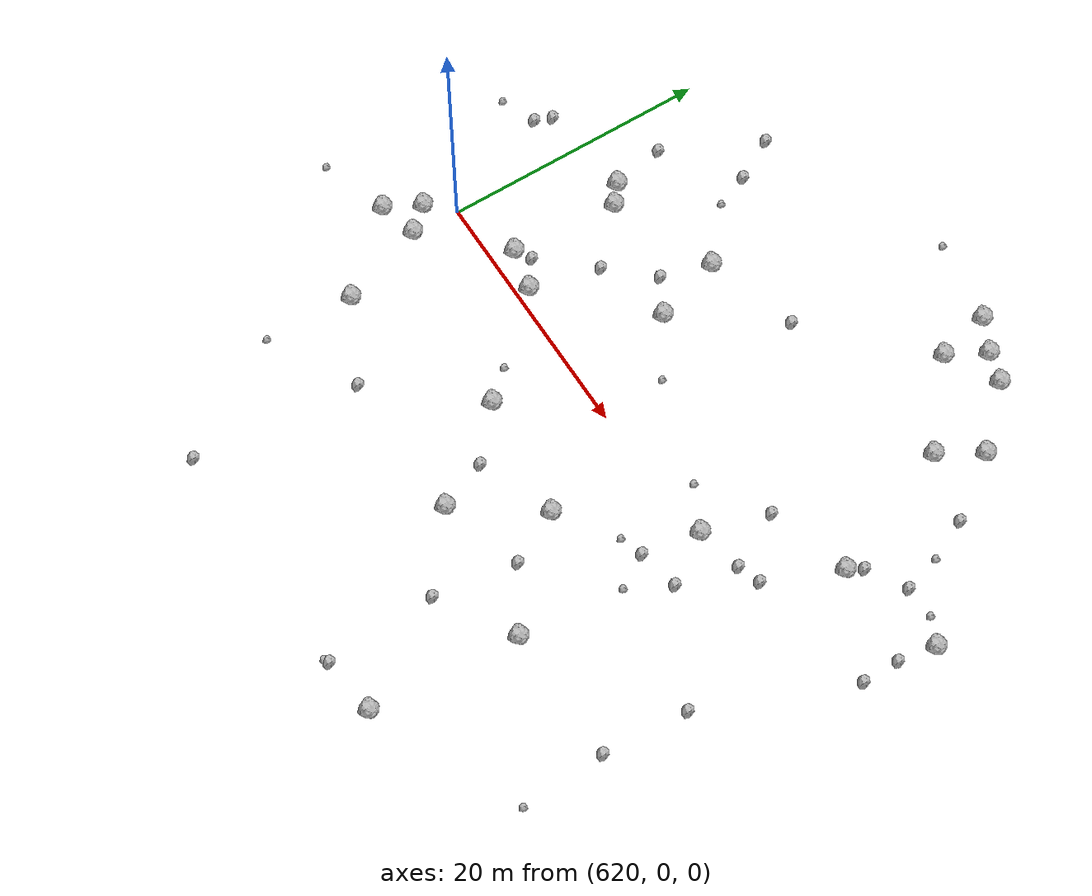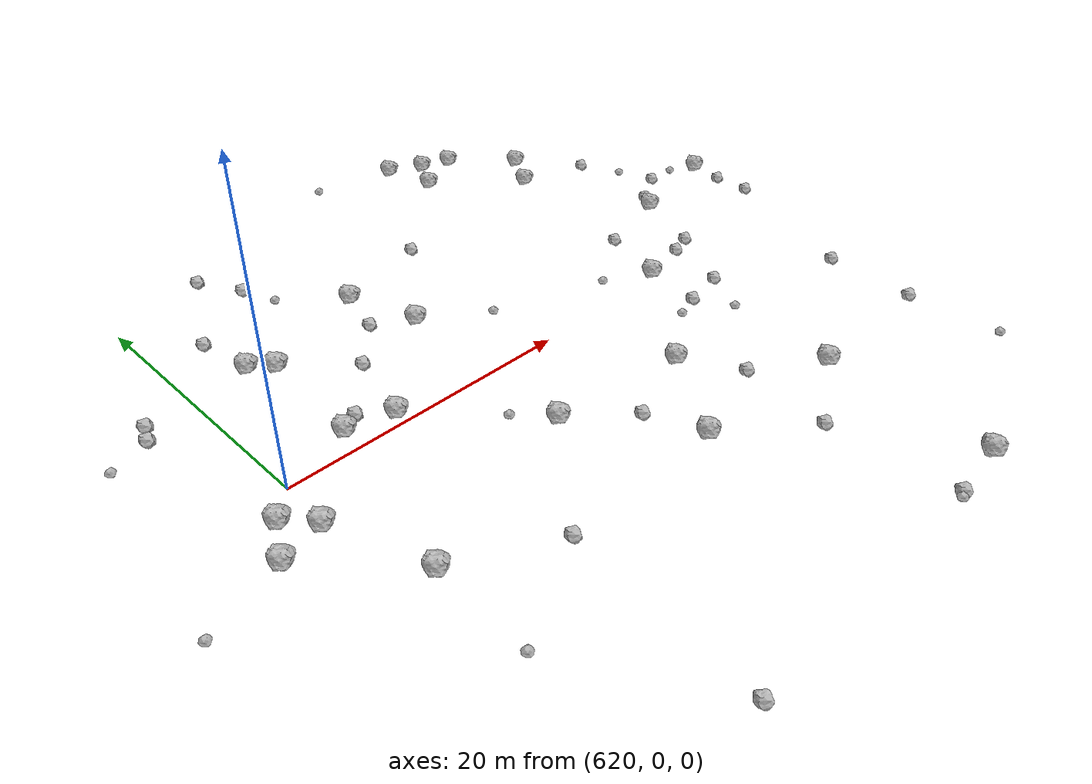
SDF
<sdf version="1.6">
 <world name="default">
  <include><uri>model://sun</uri></include>
  <model name="rock1_16_3">
   <include><uri>model://rock1</uri><pose>622.131033822337 -10.176761674696785 0.5 0 0 0</pose></include>
  </model>
  <model name="rock1_16_4">
   <include><uri>model://rock1</uri><pose>654.7632133452453 17.710231980013084 0.5 0 0 0</pose></include>
  </model>
  <model name="rock1_16_5">
   <include><uri>model://rock1</uri><pose>658.8666741311939 7.491938670286487 0.5 0 0 0</pose></include>
  </model>
  <model name="rock1_16_6">
   <include><uri>model://rock1</uri><pose>651.1179661691694 -14.065221130497436 0.5 0 0 0</pose></include>
  </model>
  <model name="rock1_16_7">
   <include><uri>model://rock1</uri><pose>650.2434406091435 25.648658871558695 0.5 0 0 0</pose></include>
  </model>
  <model name="rock1_16_8">
   <include><uri>model://rock1</uri><pose>652.55924540081 24.927459409277702 0.5 0 0 0</pose></include>
  </model>
  <model name="rock1_16_9">
   <include><uri>model://rock1</uri><pose>624.2437027087333 10.99678414826456 0.5 0 0 0</pose></include>
  </model>
  <model name="rock1_16_10">
   <include><uri>model://rock1</uri><pose>628.2794661402489 0.9388617967678776 0.5 0 0 0</pose></include>
  </model>
  <model name="rock1_16_11">
   <include><uri>model://rock1</uri><pose>656.6594795864495 20.82258681812373 0.5 0 0 0</pose></include>
  </model>
  <model name="rock1_16_12">
   <include><uri>model://rock1</uri><pose>651.1512689591783 0.6388495365997287 0.5 0 0 0</pose></include>
  </model>
  <model name="rock1_16_13">
   <include><uri>model://rock1</uri><pose>633.6342692699199 13.05014729462414 0.5 0 0 0</pose></include>
  </model>
  <model name="rock1_16_14">
   <include><uri>model://rock1</uri><pose>625.6652756738818 9.829290414496462 0.5 0 0 0</pose></include>
  </model>
  <model name="rock1_16_15">
   <include><uri>model://rock1</uri><pose>666.9270385190483 9.422065491287157 0.5 0 0 0</pose></include>
  </model>
  <model name="rock1_16_16">
   <include><uri>model://rock1</uri><pose>650.3517052610506 -25.4093412614307 0.5 0 0 0</pose></include>
  </model>
  <model name="rock1_16_17">
   <include><uri>model://rock1</uri><pose>635.2788509427403 7.852531301512265 0.5 0 0 0</pose></include>
  </model>
  <model name="rock1_16_18">
   <include><uri>model://rock1</uri><pose>647.6912390260921 26.890637089244763 0.5 0 0 0</pose></include>
  </model>
  <model name="rock1_16_19">
   <include><uri>model://rock1</uri><pose>616.867643436389 -4.453447844701287 0.5 0 0 0</pose></include>
  </model>
  <model name="rock1_16_20">
   <include><uri>model://rock1</uri><pose>640.023593996874 -13.165875688911374 0.5 0 0 0</pose></include>
  </model>
  <model name="rock1_16_21">
   <include><uri>model://rock1</uri><pose>625.0716094408705 1.6860922352283225 0.5 0 0 0</pose></include>
  </model>
  <model name="rock1_16_22">
   <include><uri>model://rock1</uri><pose>618.2739840854674 -1.8693856396151105 0.5 0 0 0</pose></include>
  </model>
  <model name="rock1_16_23">
   <include><uri>model://rock1</uri><pose>619.822406426415 -3.6478254129671477 0.5 0 0 0</pose></include>
  </model>
  <model name="rock1_16_24">
   <include><uri>model://rock1</uri><pose>648.6831906624028 22.82821907814327 0.5 0 0 0</pose></include>
  </model>
  <model name="rock1_16_25">
   <include><uri>model://rock1</uri><pose>644.3118453053862 -7.203101447175406 0.5 0 0 0</pose></include>
  </model>
  <model name="rock1_16_26">
   <include><uri>model://rock1</uri><pose>634.7836517420396 -6.1404654739827365 0.5 0 0 0</pose></include>
  </model>
  <model name="rock2_16_0">
   <include><uri>model://rock2</uri><pose>666.3892975865579 6.632010391108125 0.3 0 0 0</pose></include>
  </model>
  <model name="rock2_16_1">
   <include><uri>model://rock2</uri><pose>626.2545387520064 2.415858924844713 0.3 0 0 0</pose></include>
  </model>
  <model name="rock2_16_2">
   <include><uri>model://rock2</uri><pose>661.4011520126304 -13.847606847618891 0.3 0 0 0</pose></include>
  </model>
  <model name="rock2_16_3">
   <include><uri>model://rock2</uri><pose>640.6594468034926 15.225958649392695 0.3 0 0 0</pose></include>
  </model>
  <model name="rock2_16_4">
   <include><uri>model://rock2</uri><pose>652.5216150856415 5.599491950991059 0.3 0 0 0</pose></include>
  </model>
  <model name="rock2_16_5">
   <include><uri>model://rock2</uri><pose>645.8439056786168 -25.88682905880848 0.3 0 0 0</pose></include>
  </model>
  <model name="rock2_16_6">
   <include><uri>model://rock2</uri><pose>645.3811769472301 -17.47385852827502 0.3 0 0 0</pose></include>
  </model>
  <model name="rock2_16_7">
   <include><uri>model://rock2</uri><pose>623.4384745564081 15.041235866224802 0.3 0 0 0</pose></include>
  </model>
  <model name="rock2_16_8">
   <include><uri>model://rock2</uri><pose>616.3457996418895 8.78367688801304 0.3 0 0 0</pose></include>
  </model>
  <model name="rock2_16_9">
   <include><uri>model://rock2</uri><pose>662.3213954389815 10.339382625152446 0.3 0 0 0</pose></include>
  </model>
  <model name="rock2_16_10">
   <include><uri>model://rock2</uri><pose>650.3383005939188 -3.6504031525289236 0.3 0 0 0</pose></include>
  </model>
  <model name="rock2_16_11">
   <include><uri>model://rock2</uri><pose>653.5219716052657 -3.007886451465879 0.3 0 0 0</pose></include>
  </model>
  <model name="rock2_16_12">
   <include><uri>model://rock2</uri><pose>659.9839540671228 16.261437869197763 0.3 0 0 0</pose></include>
  </model>
  <model name="rock2_16_13">
   <include><uri>model://rock2</uri><pose>666.4077863983476 3.7941020774145144 0.3 0 0 0</pose></include>
  </model>
  <model name="rock2_16_14">
   <include><uri>model://rock2</uri><pose>627.34780195026 -26.03579270339329 0.3 0 0 0</pose></include>
  </model>
  <model name="rock2_16_15">
   <include><uri>model://rock2</uri><pose>626.9464153753668 22.132062646988523 0.3 0 0 0</pose></include>
  </model>
  <model name="rock2_16_16">
   <include><uri>model://rock2</uri><pose>638.4643483012159 -9.404893784329165 0.3 0 0 0</pose></include>
  </model>
  <model name="rock2_16_17">
   <include><uri>model://rock2</uri><pose>659.459194530159 8.62401496833833 0.3 0 0 0</pose></include>
  </model>
  <model name="rock2_16_18">
   <include><uri>model://rock2</uri><pose>629.5759014961361 6.174886640499722 0.3 0 0 0</pose></include>
  </model>
  <model name="rock2_16_19">
   <include><uri>model://rock2</uri><pose>632.4846237894536 9.367495044641522 0.3 0 0 0</pose></include>
  </model>
  <model name="rock2_16_20">
   <include><uri>model://rock2</uri><pose>646.330475928715 -11.1874119396563 0.3 0 0 0</pose></include>
  </model>
  <model name="rock2_16_21">
   <include><uri>model://rock2</uri><pose>654.6834127830489 1.4169555211137954 0.3 0 0 0</pose></include>
  </model>
  <model name="rock2_16_22">
   <include><uri>model://rock2</uri><pose>661.831542504553 -7.365374976367633 0.3 0 0 0</pose></include>
  </model>
  <model name="rock2_16_23">
   <include><uri>model://rock2</uri><pose>628.68093111799 19.01147393523984 0.3 0 0 0</pose></include>
  </model>
  <model name="rock2_16_24">
   <include><uri>model://rock2</uri><pose>656.4478082170688 2.013033409574298 0.3 0 0 0</pose></include>
  </model>
  <model name="rock2_16_25">
   <include><uri>model://rock2</uri><pose>616.8631638012099 10.05667310692796 0.3 0 0 0</pose></include>
  </model>
  <model name="rock2_16_26">
   <include><uri>model://rock2</uri><pose>628.4652678704715 -13.392549789577842 0.3 0 0 0</pose></include>
  </model>
  <model name="rock3_16_0">
   <include><uri>model://rock3</uri><pose>632.7851521431512 -3.968492367638543 0.2 0 0 0</pose></include>
  </model>
  <model name="rock3_16_1">
   <include><uri>model://rock3</uri><pose>647.7047009506296 2.307942652209128 0.2 0 0 0</pose></include>
  </model>
  <model name="rock3_16_2">
   <include><uri>model://rock3</uri><pose>629.6799852598557 16.429846455558717 0.2 0 0 0</pose></include>
  </model>
  <model name="rock3_16_3">
   <include><uri>model://rock3</uri><pose>639.5927743628823 4.925027233736351 0.2 0 0 0</pose></include>
  </model>
  <model name="rock3_16_4">
   <include><uri>model://rock3</uri><pose>621.8035120337769 -16.992385009238504 0.2 0 0 0</pose></include>
  </model>
  <model name="rock3_16_5">
   <include><uri>model://rock3</uri><pose>613.6309441931538 7.7104010881263605 0.2 0 0 0</pose></include>
  </model>
  <model name="rock3_16_6">
   <include><uri>model://rock3</uri><pose>645.4381418797195 -26.085144948883816 0.2 0 0 0</pose></include>
  </model>
  <model name="rock3_16_7">
   <include><uri>model://rock3</uri><pose>661.7691700982368 -20.34544544780116 0.2 0 0 0</pose></include>
  </model>
  <model name="rock3_16_8">
   <include><uri>model://rock3</uri><pose>661.4462757349152 13.172986355302442 0.2 0 0 0</pose></include>
  </model>
  <model name="rock3_16_9">
   <include><uri>model://rock3</uri><pose>611.5982185483098 -6.149013699438726 0.2 0 0 0</pose></include>
  </model>
  <model name="rock3_16_10">
   <include><uri>model://rock3</uri><pose>651.8447848745834 -6.1759737846634195 0.2 0 0 0</pose></include>
  </model>
  <model name="rock3_16_11">
   <include><uri>model://rock3</uri><pose>648.5447810403231 -4.237957486261397 0.2 0 0 0</pose></include>
  </model>
  <model name="rock3_16_12">
   <include><uri>model://rock3</uri><pose>664.7889973266208 10.388262308435117 0.2 0 0 0</pose></include>
  </model>
  <model name="rock3_16_13">
   <include><uri>model://rock3</uri><pose>641.198976363954 27.93566974692589 0.2 0 0 0</pose></include>
  </model>
 </world>
</sdf>
